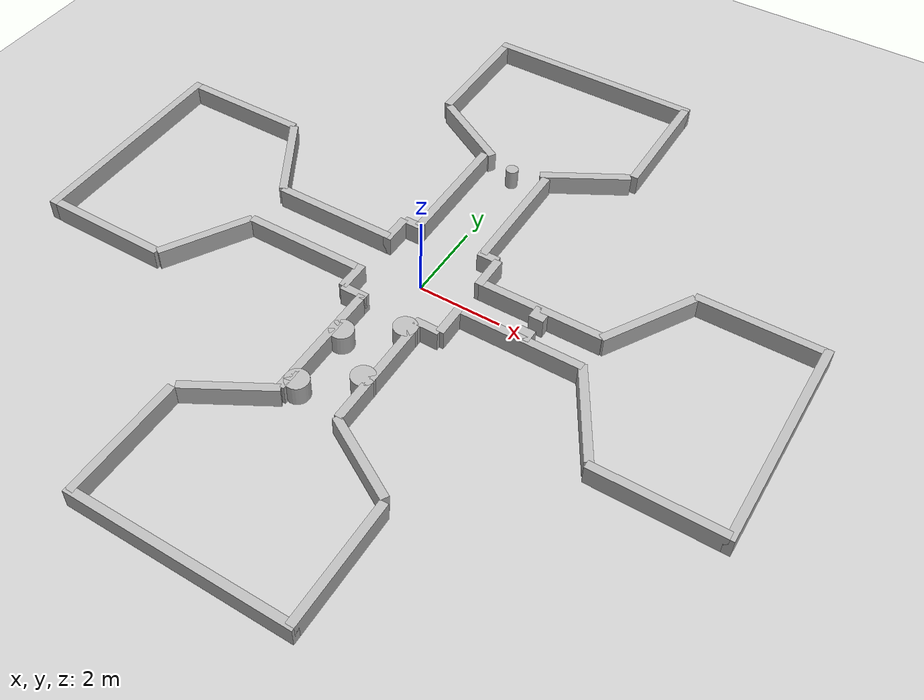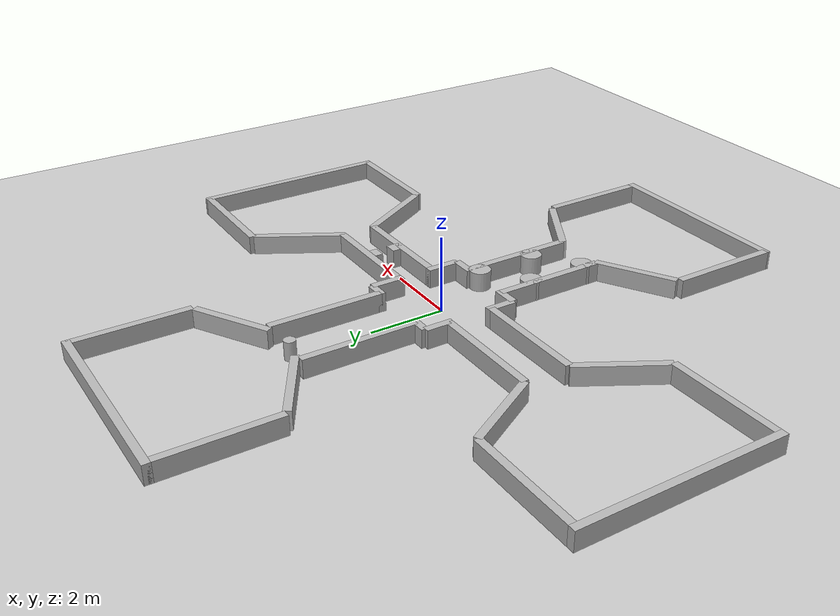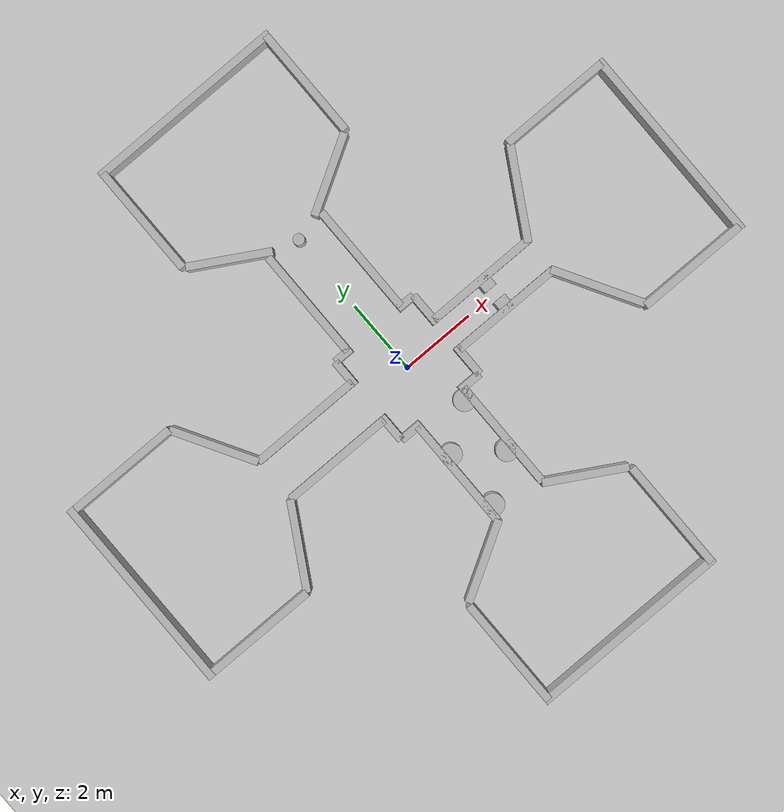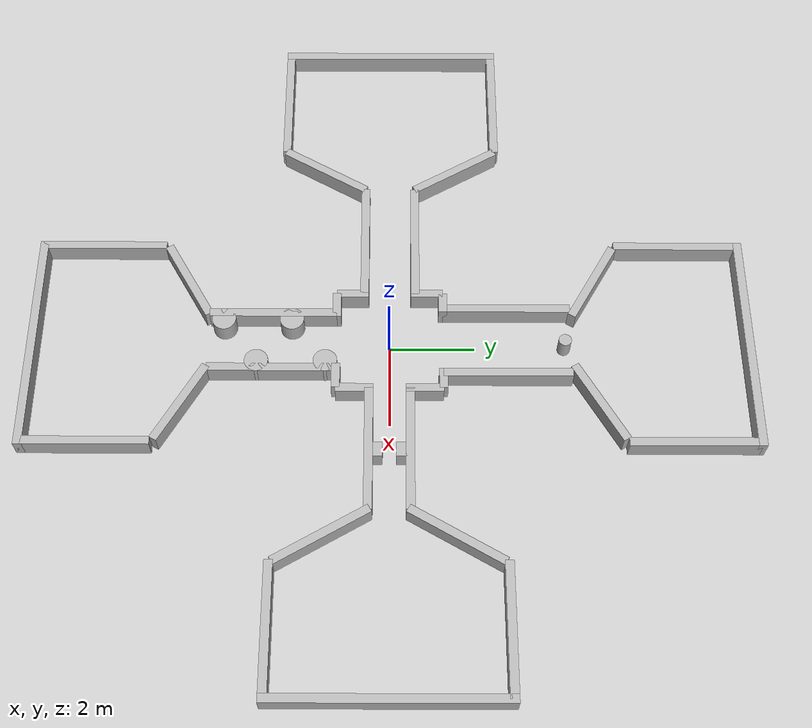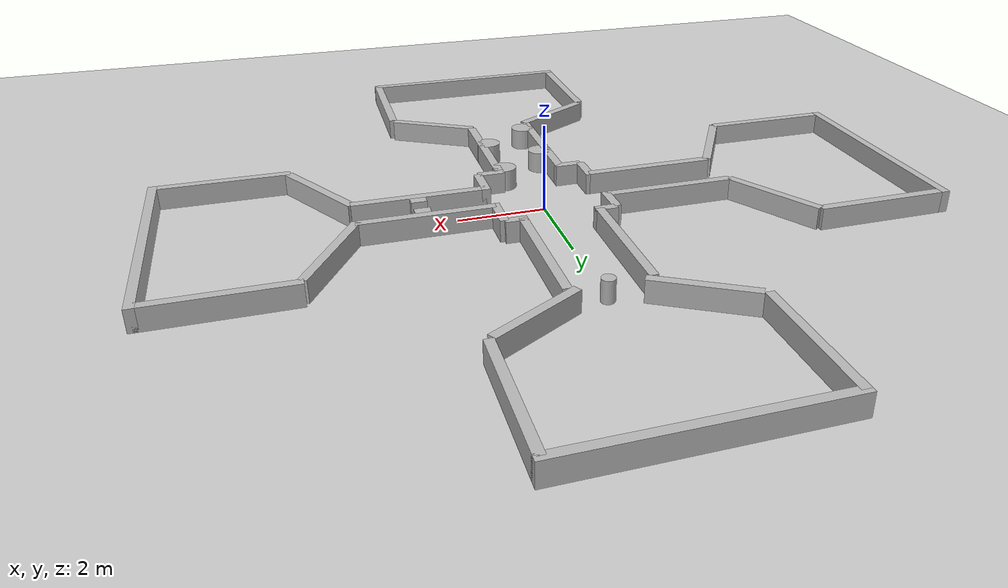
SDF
<?xml version="1.0"?>
<sdf version="1.8">
  <world name="dqn">

    <plugin filename="gz-sim-physics-system" name="gz::sim::systems::Physics"></plugin>
    <plugin filename="gz-sim-user-commands-system" name="gz::sim::systems::UserCommands"></plugin>
    <plugin filename="gz-sim-scene-broadcaster-system" name="gz::sim::systems::SceneBroadcaster"></plugin>
    <plugin filename="gz-sim-sensors-system" name="gz::sim::systems::Sensors"><render_engine>ogre2</render_engine></plugin>

    <physics type="ode">
      <real_time_update_rate>1000.0</real_time_update_rate>
      <max_step_size>0.001</max_step_size>
      <real_time_factor>1</real_time_factor>
      <ode>
        <solver><type>quick</type><iters>150</iters><sor>1.4</sor></solver>
        <constraints><cfm>0.00001</cfm><erp>0.2</erp></constraints>
      </ode>
    </physics>

    <include><uri>https://fuel.gazebosim.org/1.0/OpenRobotics/models/Ground Plane</uri></include>
    <light type="directional" name="sun">
      <cast_shadows>false</cast_shadows>
      <pose>0 0 10 0 0 0</pose>
      <diffuse>0.8 0.8 0.8 1</diffuse>
      <specular>0.2 0.2 0.2 1</specular>
      <direction>-0.5 0.1 -0.9</direction>
    </light>

      <model name="wall_c_n1"><static>true</static><pose>1.25 0.8125 0.25 0 0 0</pose><link name="link"><collision name="collision"><geometry><box><size>0.2 0.875 0.5</size></box></geometry></collision><visual name="visual"><geometry><box><size>0.2 0.875 0.5</size></box></geometry></visual></link></model>
      <model name="wall_c_n2"><static>true</static><pose>1.25 -0.8125 0.25 0 0 0</pose><link name="link"><collision name="collision"><geometry><box><size>0.2 0.875 0.5</size></box></geometry></collision><visual name="visual"><geometry><box><size>0.2 0.875 0.5</size></box></geometry></visual></link></model>

      <model name="wall_c_s1"><static>true</static><pose>-1.25 0.875 0.25 0 0 0</pose><link name="link"><collision name="collision"><geometry><box><size>0.2 0.75 0.5</size></box></geometry></collision><visual name="visual"><geometry><box><size>0.2 0.75 0.5</size></box></geometry></visual></link></model>
      <model name="wall_c_s2"><static>true</static><pose>-1.25 -0.875 0.25 0 0 0</pose><link name="link"><collision name="collision"><geometry><box><size>0.2 0.75 0.5</size></box></geometry></collision><visual name="visual"><geometry><box><size>0.2 0.75 0.5</size></box></geometry></visual></link></model>

      <model name="wall_c_w1"><static>true</static><pose>1.0 1.25 0.25 0 0 0</pose><link name="link"><collision name="collision"><geometry><box><size>0.5 0.2 0.5</size></box></geometry></collision><visual name="visual"><geometry><box><size>0.5 0.2 0.5</size></box></geometry></visual></link></model>
      <model name="wall_c_w2"><static>true</static><pose>-1.0 1.25 0.25 0 0 0</pose><link name="link"><collision name="collision"><geometry><box><size>0.5 0.2 0.5</size></box></geometry></collision><visual name="visual"><geometry><box><size>0.5 0.2 0.5</size></box></geometry></visual></link></model>

      <model name="wall_c_e1"><static>true</static><pose>0.9375 -1.25 0.25 0 0 0</pose><link name="link"><collision name="collision"><geometry><box><size>0.625 0.2 0.5</size></box></geometry></collision><visual name="visual"><geometry><box><size>0.625 0.2 0.5</size></box></geometry></visual></link></model>
      <model name="wall_c_e2"><static>true</static><pose>-0.9375 -1.25 0.25 0 0 0</pose><link name="link"><collision name="collision"><geometry><box><size>0.625 0.2 0.5</size></box></geometry></collision><visual name="visual"><geometry><box><size>0.625 0.2 0.5</size></box></geometry></visual></link></model>

      <model name="wall_n_1"><static>true</static><pose>6.9047 2.6 0.25 0 0 0</pose><link name="link"><collision name="collision"><geometry><box><size>3.0 0.2 0.5</size></box></geometry></collision><visual name="visual"><geometry><box><size>3.0 0.2 0.5</size></box></geometry></visual></link></model>
      <model name="wall_n_2"><static>true</static><pose>6.9047 -2.6 0.25 0 0 0</pose><link name="link"><collision name="collision"><geometry><box><size>3.0 0.2 0.5</size></box></geometry></collision><visual name="visual"><geometry><box><size>3.0 0.2 0.5</size></box></geometry></visual></link></model>
      <model name="wall_n_3"><static>true</static><pose>8.4047 0 0.25 0 0 0</pose><link name="link"><collision name="collision"><geometry><box><size>0.2 5.4 0.5</size></box></geometry></collision><visual name="visual"><geometry><box><size>0.2 5.4 0.5</size></box></geometry></visual></link></model>
      <model name="wall_n_4"><static>true</static><pose>4.8273 1.4875 0.25 0 0 -0.5236</pose><link name="link"><collision name="collision"><geometry><box><size>0.2 2.4495 0.5</size></box></geometry></collision><visual name="visual"><geometry><box><size>0.2 2.4495 0.5</size></box></geometry></visual></link></model>
      <model name="wall_n_5"><static>true</static><pose>4.8273 -1.4875 0.25 0 0 0.5236</pose><link name="link"><collision name="collision"><geometry><box><size>0.2 2.4495 0.5</size></box></geometry></collision><visual name="visual"><geometry><box><size>0.2 2.4495 0.5</size></box></geometry></visual></link></model>
      <model name="wall_n_6"><static>true</static><pose>2.75 0.475 0.25 0 0 0</pose><link name="link"><collision name="collision"><geometry><box><size>3.0 0.2 0.5</size></box></geometry></collision><visual name="visual"><geometry><box><size>3.0 0.2 0.5</size></box></geometry></visual></link></model>
      <model name="wall_n_7"><static>true</static><pose>2.75 -0.475 0.25 0 0 0</pose><link name="link"><collision name="collision"><geometry><box><size>3.0 0.2 0.5</size></box></geometry></collision><visual name="visual"><geometry><box><size>3.0 0.2 0.5</size></box></geometry></visual></link></model>

      <model name="wall_s_1"><static>true</static><pose>-6.9047 2.6 0.25 0 0 0</pose><link name="link"><collision name="collision"><geometry><box><size>3.0 0.2 0.5</size></box></geometry></collision><visual name="visual"><geometry><box><size>3.0 0.2 0.5</size></box></geometry></visual></link></model>
      <model name="wall_s_2"><static>true</static><pose>-6.9047 -2.6 0.25 0 0 0</pose><link name="link"><collision name="collision"><geometry><box><size>3.0 0.2 0.5</size></box></geometry></collision><visual name="visual"><geometry><box><size>3.0 0.2 0.5</size></box></geometry></visual></link></model>
      <model name="wall_s_3"><static>true</static><pose>-8.5047 0 0.25 0 0 0</pose><link name="link"><collision name="collision"><geometry><box><size>0.2 5.4 0.5</size></box></geometry></collision><visual name="visual"><geometry><box><size>0.2 5.4 0.5</size></box></geometry></visual></link></model>
      <model name="wall_s_4"><static>true</static><pose>-4.8274 1.6 0.25 0 0 0.5236</pose><link name="link"><collision name="collision"><geometry><box><size>0.2 2.3094 0.5</size></box></geometry></collision><visual name="visual"><geometry><box><size>0.2 2.3094 0.5</size></box></geometry></visual></link></model>
      <model name="wall_s_5"><static>true</static><pose>-4.8274 -1.6 0.25 0 0 -0.5236</pose><link name="link"><collision name="collision"><geometry><box><size>0.2 2.3094 0.5</size></box></geometry></collision><visual name="visual"><geometry><box><size>0.2 2.3094 0.5</size></box></geometry></visual></link></model>
      <model name="wall_s_6"><static>true</static><pose>-2.75 0.6 0.25 0 0 0</pose><link name="link"><collision name="collision"><geometry><box><size>3.0 0.2 0.5</size></box></geometry></collision><visual name="visual"><geometry><box><size>3.0 0.2 0.5</size></box></geometry></visual></link></model>
      <model name="wall_s_7"><static>true</static><pose>-2.75 -0.6 0.25 0 0 0</pose><link name="link"><collision name="collision"><geometry><box><size>3.0 0.2 0.5</size></box></geometry></collision><visual name="visual"><geometry><box><size>3.0 0.2 0.5</size></box></geometry></visual></link></model>

      <model name="wall_w_1"><static>true</static><pose>2.6 6.9047 0.25 0 0 0</pose><link name="link"><collision name="collision"><geometry><box><size>0.2 3.0 0.5</size></box></geometry></collision><visual name="visual"><geometry><box><size>0.2 3.0 0.5</size></box></geometry></visual></link></model>
      <model name="wall_w_2"><static>true</static><pose>-2.6 6.9047 0.25 0 0 0</pose><link name="link"><collision name="collision"><geometry><box><size>0.2 3.0 0.5</size></box></geometry></collision><visual name="visual"><geometry><box><size>0.2 3.0 0.5</size></box></geometry></visual></link></model>
      <model name="wall_w_3"><static>true</static><pose>0 8.4047 0.25 0 0 0</pose><link name="link"><collision name="collision"><geometry><box><size>5.4 0.2 0.5</size></box></geometry></collision><visual name="visual"><geometry><box><size>5.4 0.2 0.5</size></box></geometry></visual></link></model>
      <model name="wall_w_4"><static>true</static><pose>1.6 4.8273 0.25 0 0 0.5236</pose><link name="link"><collision name="collision"><geometry><box><size>2.1651 0.2 0.5</size></box></geometry></collision><visual name="visual"><geometry><box><size>2.1651 0.2 0.5</size></box></geometry></visual></link></model>
      <model name="wall_w_5"><static>true</static><pose>-1.6 4.8273 0.25 0 0 -0.5236</pose><link name="link"><collision name="collision"><geometry><box><size>2.1651 0.2 0.5</size></box></geometry></collision><visual name="visual"><geometry><box><size>2.1651 0.2 0.5</size></box></geometry></visual></link></model>
      <model name="wall_w_6"><static>true</static><pose>0.85 2.75 0.25 0 0 0</pose><link name="link"><collision name="collision"><geometry><box><size>0.2 3.0 0.5</size></box></geometry></collision><visual name="visual"><geometry><box><size>0.2 3.0 0.5</size></box></geometry></visual></link></model>
      <model name="wall_w_7"><static>true</static><pose>-0.85 2.75 0.25 0 0 0</pose><link name="link"><collision name="collision"><geometry><box><size>0.2 3.0 0.5</size></box></geometry></collision><visual name="visual"><geometry><box><size>0.2 3.0 0.5</size></box></geometry></visual></link></model>

      <model name="wall_e_1"><static>true</static><pose>2.6 -6.9047 0.25 0 0 0</pose><link name="link"><collision name="collision"><geometry><box><size>0.2 3.0 0.5</size></box></geometry></collision><visual name="visual"><geometry><box><size>0.2 3.0 0.5</size></box></geometry></visual></link></model>
      <model name="wall_e_2"><static>true</static><pose>-2.6 -6.9047 0.25 0 0 0</pose><link name="link"><collision name="collision"><geometry><box><size>0.2 3.0 0.5</size></box></geometry></collision><visual name="visual"><geometry><box><size>0.2 3.0 0.5</size></box></geometry></visual></link></model>
      <model name="wall_e_3"><static>true</static><pose>0 -8.3722 0.25 0 0 0</pose><link name="link"><collision name="collision"><geometry><box><size>5.4 0.2 0.5</size></box></geometry></collision><visual name="visual"><geometry><box><size>5.4 0.2 0.5</size></box></geometry></visual></link></model>
      <model name="wall_e_4"><static>true</static><pose>1.625 -4.7947 0.25 0 0 -0.5236</pose><link name="link"><collision name="collision"><geometry><box><size>2.1651 0.2 0.5</size></box></geometry></collision><visual name="visual"><geometry><box><size>2.1651 0.2 0.5</size></box></geometry></visual></link></model>
      <model name="wall_e_5"><static>true</static><pose>-1.625 -4.7947 0.25 0 0 0.5236</pose><link name="link"><collision name="collision"><geometry><box><size>2.1651 0.2 0.5</size></box></geometry></collision><visual name="visual"><geometry><box><size>2.1651 0.2 0.5</size></box></geometry></visual></link></model>
      <model name="wall_e_6"><static>true</static><pose>0.725 -2.75 0.25 0 0 0</pose><link name="link"><collision name="collision"><geometry><box><size>0.2 3.0 0.5</size></box></geometry></collision><visual name="visual"><geometry><box><size>0.2 3.0 0.5</size></box></geometry></visual></link></model>
      <model name="wall_e_7"><static>true</static><pose>-0.725 -2.75 0.25 0 0 0</pose><link name="link"><collision name="collision"><geometry><box><size>0.2 3.0 0.5</size></box></geometry></collision><visual name="visual"><geometry><box><size>0.2 3.0 0.5</size></box></geometry></visual></link></model>

      <model name="obs_w"><static>true</static><pose>0 4.1 0.25 0 0 0</pose><link name="link"><collision name="collision"><geometry><cylinder><radius>0.15</radius><length>0.5</length></cylinder></geometry></collision><visual name="visual"><geometry><cylinder><radius>0.15</radius><length>0.5</length></cylinder></geometry></visual></link></model>
      <model name="obs_e_1"><static>true</static><pose>0.55 -1.5 0.25 0 0 0</pose><link name="link"><collision name="collision"><geometry><cylinder><radius>0.28</radius><length>0.5</length></cylinder></geometry></collision><visual name="visual"><geometry><cylinder><radius>0.28</radius><length>0.5</length></cylinder></geometry></visual></link></model>
      <model name="obs_e_2"><static>true</static><pose>-0.55 -2.3 0.25 0 0 0</pose><link name="link"><collision name="collision"><geometry><cylinder><radius>0.28</radius><length>0.5</length></cylinder></geometry></collision><visual name="visual"><geometry><cylinder><radius>0.28</radius><length>0.5</length></cylinder></geometry></visual></link></model>
      <model name="obs_e_3"><static>true</static><pose>0.55 -3.1 0.25 0 0 0</pose><link name="link"><collision name="collision"><geometry><cylinder><radius>0.28</radius><length>0.5</length></cylinder></geometry></collision><visual name="visual"><geometry><cylinder><radius>0.28</radius><length>0.5</length></cylinder></geometry></visual></link></model>
      <model name="obs_e_4"><static>true</static><pose>-0.55 -3.9 0.25 0 0 0</pose><link name="link"><collision name="collision"><geometry><cylinder><radius>0.28</radius><length>0.5</length></cylinder></geometry></collision><visual name="visual"><geometry><cylinder><radius>0.28</radius><length>0.5</length></cylinder></geometry></visual></link></model>
      <model name="obs_n_1"><static>true</static><pose>2.8 0.33 0.25 0 0 0</pose><link name="link"><collision name="collision"><geometry><box><size>0.35 0.35 0.5</size></box></geometry></collision><visual name="visual"><geometry><box><size>0.35 0.35 0.5</size></box></geometry></visual></link></model>
      <model name="obs_n_2"><static>true</static><pose>2.8 -0.33 0.25 0 0 0</pose><link name="link"><collision name="collision"><geometry><box><size>0.35 0.35 0.5</size></box></geometry></collision><visual name="visual"><geometry><box><size>0.35 0.35 0.5</size></box></geometry></visual></link></model>
  </world>
</sdf>
